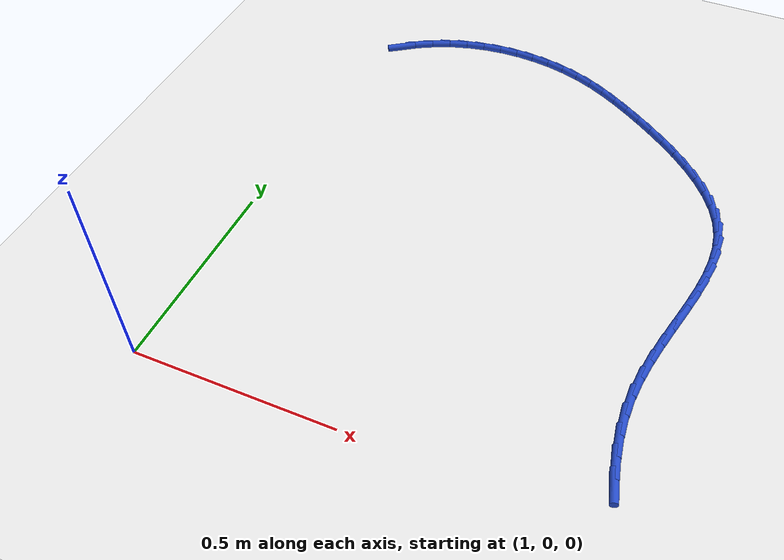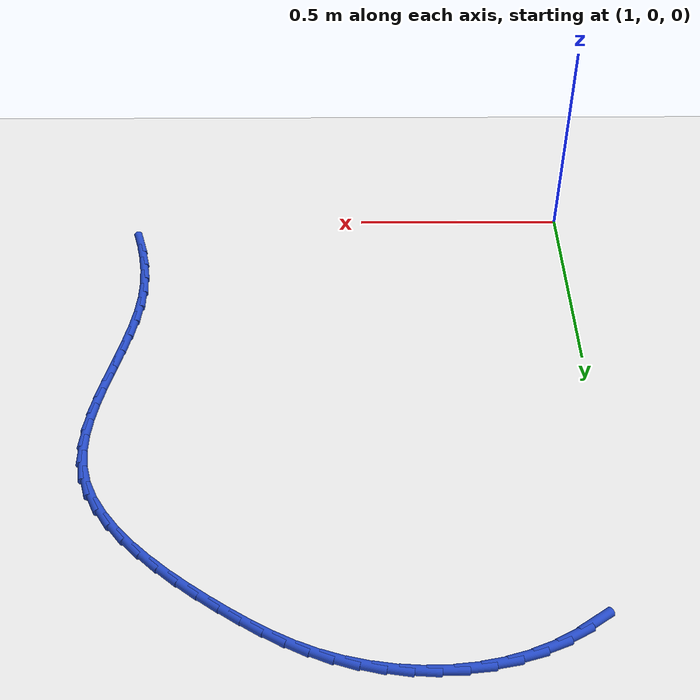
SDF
<sdf version="1.6">
 <world name="default">
  <model name="ground_plane">
   <static>1</static>
   <link name="link">
    <collision name="collision">
     <geometry><plane><normal>0 0 1</normal><size>100 100</size></plane></geometry>
     <surface><friction><ode><mu>100</mu><mu2>50</mu2></ode></friction></surface>
    </collision>
    <visual name="visual">
     <cast_shadows>0</cast_shadows>
     <geometry><plane><normal>0 0 1</normal><size>100 100</size></plane></geometry>
     <material>
      <script><uri>file://media/materials/scripts/gazebo.material</uri><name>Gazebo/WhiteGlow</name></script>
     </material>
    </visual>
   </link>
  </model>
  <model name="line">
   <link name="link_41">
    <pose>1.079669425639153 1.2213472108365582 0.01 0 1.57 0.5984856214067509</pose>
    <collision name="collision">
     <geometry><cylinder><radius>0.01</radius><length>0.08</length></cylinder></geometry>
    </collision>
    <visual name="visual">
     <material>
      <script><name>Gazebo/Blue</name><uri>file://media/materials/scripts/gazebo.material</uri></script>
     </material>
     <geometry><cylinder><radius>0.01</radius><length>0.08</length></cylinder></geometry>
    </visual>
   </link>
   <link name="link_42">
    <pose>1.1231731549273072 1.2510130970443436 0.01 0 1.57 0.4909132639672876</pose>
    <collision name="collision">
     <geometry><cylinder><radius>0.01</radius><length>0.08</length></cylinder></geometry>
    </collision>
    <visual name="visual">
     <material>
      <script><name>Gazebo/Blue</name><uri>file://media/materials/scripts/gazebo.material</uri></script>
     </material>
     <geometry><cylinder><radius>0.01</radius><length>0.08</length></cylinder></geometry>
    </visual>
   </link>
   <link name="link_43">
    <pose>1.168919621076455 1.2754674107403128 0.01 0 1.57 0.385621193769937</pose>
    <collision name="collision">
     <geometry><cylinder><radius>0.01</radius><length>0.08</length></cylinder></geometry>
    </collision>
    <visual name="visual">
     <material>
      <script><name>Gazebo/Blue</name><uri>file://media/materials/scripts/gazebo.material</uri></script>
     </material>
     <geometry><cylinder><radius>0.01</radius><length>0.08</length></cylinder></geometry>
    </visual>
   </link>
   <link name="link_44">
    <pose>1.2165154209391176 1.2947887068980033 0.01 0 1.57 0.2851914351242984</pose>
    <collision name="collision">
     <geometry><cylinder><radius>0.01</radius><length>0.08</length></cylinder></geometry>
    </collision>
    <visual name="visual">
     <material>
      <script><name>Gazebo/Blue</name><uri>file://media/materials/scripts/gazebo.material</uri></script>
     </material>
     <geometry><cylinder><radius>0.01</radius><length>0.08</length></cylinder></geometry>
    </visual>
   </link>
   <link name="link_45">
    <pose>1.2655174116936636 1.309155281147472 0.01 0 1.57 0.18963095166697283</pose>
    <collision name="collision">
     <geometry><cylinder><radius>0.01</radius><length>0.08</length></cylinder></geometry>
    </collision>
    <visual name="visual">
     <material>
      <script><name>Gazebo/Blue</name><uri>file://media/materials/scripts/gazebo.material</uri></script>
     </material>
     <geometry><cylinder><radius>0.01</radius><length>0.08</length></cylinder></geometry>
    </visual>
   </link>
   <link name="link_46">
    <pose>1.315482450518464 1.318745429118775 0.01 0 1.57 0.09856091477869121</pose>
    <collision name="collision">
     <geometry><cylinder><radius>0.01</radius><length>0.08</length></cylinder></geometry>
    </collision>
    <visual name="visual">
     <material>
      <script><name>Gazebo/Blue</name><uri>file://media/materials/scripts/gazebo.material</uri></script>
     </material>
     <geometry><cylinder><radius>0.01</radius><length>0.08</length></cylinder></geometry>
    </visual>
   </link>
   <link name="link_47">
    <pose>1.3659673945918875 1.3237374464419696 0.01 0 1.57 0.011316031862768706</pose>
    <collision name="collision">
     <geometry><cylinder><radius>0.01</radius><length>0.08</length></cylinder></geometry>
    </collision>
    <visual name="visual">
     <material>
      <script><name>Gazebo/Blue</name><uri>file://media/materials/scripts/gazebo.material</uri></script>
     </material>
     <geometry><cylinder><radius>0.01</radius><length>0.08</length></cylinder></geometry>
    </visual>
   </link>
   <link name="link_48">
    <pose>1.4165291010923058 1.3243096287471123 0.01 0 1.57 -0.07297177033497682</pose>
    <collision name="collision">
     <geometry><cylinder><radius>0.01</radius><length>0.08</length></cylinder></geometry>
    </collision>
    <visual name="visual">
     <material>
      <script><name>Gazebo/Blue</name><uri>file://media/materials/scripts/gazebo.material</uri></script>
     </material>
     <geometry><cylinder><radius>0.01</radius><length>0.08</length></cylinder></geometry>
    </visual>
   </link>
   <link name="link_49">
    <pose>1.4667244271980877 1.3206402716642602 0.01 0 1.57 -0.15531435136081623</pose>
    <collision name="collision">
     <geometry><cylinder><radius>0.01</radius><length>0.08</length></cylinder></geometry>
    </collision>
    <visual name="visual">
     <material>
      <script><name>Gazebo/Blue</name><uri>file://media/materials/scripts/gazebo.material</uri></script>
     </material>
     <geometry><cylinder><radius>0.01</radius><length>0.08</length></cylinder></geometry>
    </visual>
   </link>
   <link name="link_50">
    <pose>1.5161102300876028 1.3129076708234693 0.01 0 1.57 -0.2368331651425001</pose>
    <collision name="collision">
     <geometry><cylinder><radius>0.01</radius><length>0.08</length></cylinder></geometry>
    </collision>
    <visual name="visual">
     <material>
      <script><name>Gazebo/Blue</name><uri>file://media/materials/scripts/gazebo.material</uri></script>
     </material>
     <geometry><cylinder><radius>0.01</radius><length>0.08</length></cylinder></geometry>
    </visual>
   </link>
   <link name="link_51">
    <pose>1.564243366939222 1.3012901218547963 0.01 0 1.57 -0.3187390594051004</pose>
    <collision name="collision">
     <geometry><cylinder><radius>0.01</radius><length>0.08</length></cylinder></geometry>
    </collision>
    <visual name="visual">
     <material>
      <script><name>Gazebo/Blue</name><uri>file://media/materials/scripts/gazebo.material</uri></script>
     </material>
     <geometry><cylinder><radius>0.01</radius><length>0.08</length></cylinder></geometry>
    </visual>
   </link>
   <link name="link_52">
    <pose>1.6106812710571592 1.2859660512543754 0.01 0 1.57 -0.3991932722505689</pose>
    <collision name="collision">
     <geometry><cylinder><radius>0.01</radius><length>0.08</length></cylinder></geometry>
    </collision>
    <visual name="visual">
     <material>
      <script><name>Gazebo/Blue</name><uri>file://media/materials/scripts/gazebo.material</uri></script>
     </material>
     <geometry><cylinder><radius>0.01</radius><length>0.08</length></cylinder></geometry>
    </visual>
   </link>
   <link name="link_53">
    <pose>1.6552348368600316 1.26717145881058 0.01 0 1.57 -0.4694994752697667</pose>
    <collision name="collision">
     <geometry><cylinder><radius>0.01</radius><length>0.08</length></cylinder></geometry>
    </collision>
    <visual name="visual">
     <material>
      <script><name>Gazebo/Blue</name><uri>file://media/materials/scripts/gazebo.material</uri></script>
     </material>
     <geometry><cylinder><radius>0.01</radius><length>0.08</length></cylinder></geometry>
    </visual>
   </link>
   <link name="link_54">
    <pose>1.6983649424370144 1.2452899870770489 0.01 0 1.57 -0.5263733945198128</pose>
    <collision name="collision">
     <geometry><cylinder><radius>0.01</radius><length>0.08</length></cylinder></geometry>
    </collision>
    <visual name="visual">
     <material>
      <script><name>Gazebo/Blue</name><uri>file://media/materials/scripts/gazebo.material</uri></script>
     </material>
     <geometry><cylinder><radius>0.01</radius><length>0.08</length></cylinder></geometry>
    </visual>
   </link>
   <link name="link_55">
    <pose>1.7406351977806955 1.220728613997195 0.01 0 1.57 -0.568821658029842</pose>
    <collision name="collision">
     <geometry><cylinder><radius>0.01</radius><length>0.08</length></cylinder></geometry>
    </collision>
    <visual name="visual">
     <material>
      <script><name>Gazebo/Blue</name><uri>file://media/materials/scripts/gazebo.material</uri></script>
     </material>
     <geometry><cylinder><radius>0.01</radius><length>0.08</length></cylinder></geometry>
    </visual>
   </link>
   <link name="link_56">
    <pose>1.7826092128836646 1.1938943175144325 0.01 0 1.57 -0.5977009438417707</pose>
    <collision name="collision">
     <geometry><cylinder><radius>0.01</radius><length>0.08</length></cylinder></geometry>
    </collision>
    <visual name="visual">
     <material>
      <script><name>Gazebo/Blue</name><uri>file://media/materials/scripts/gazebo.material</uri></script>
     </material>
     <geometry><cylinder><radius>0.01</radius><length>0.08</length></cylinder></geometry>
    </visual>
   </link>
   <link name="link_57">
    <pose>1.824791903198454 1.1651777344412386 0.01 0 1.57 -0.6254450036527809</pose>
    <collision name="collision">
     <geometry><cylinder><radius>0.01</radius><length>0.08</length></cylinder></geometry>
    </collision>
    <visual name="visual">
     <material>
      <script><name>Gazebo/Blue</name><uri>file://media/materials/scripts/gazebo.material</uri></script>
     </material>
     <geometry><cylinder><radius>0.01</radius><length>0.08</length></cylinder></geometry>
    </visual>
   </link>
   <link name="link_58">
    <pose>1.866918822145615 1.1347553037159677 0.01 0 1.57 -0.6611488873387801</pose>
    <collision name="collision">
     <geometry><cylinder><radius>0.01</radius><length>0.08</length></cylinder></geometry>
    </collision>
    <visual name="visual">
     <material>
      <script><name>Gazebo/Blue</name><uri>file://media/materials/scripts/gazebo.material</uri></script>
     </material>
     <geometry><cylinder><radius>0.01</radius><length>0.08</length></cylinder></geometry>
    </visual>
   </link>
   <link name="link_59">
    <pose>1.9081844395417216 1.102652821337921 0.01 0 1.57 -0.7061119390348113</pose>
    <collision name="collision">
     <geometry><cylinder><radius>0.01</radius><length>0.08</length></cylinder></geometry>
    </collision>
    <visual name="visual">
     <material>
      <script><name>Gazebo/Blue</name><uri>file://media/materials/scripts/gazebo.material</uri></script>
     </material>
     <geometry><cylinder><radius>0.01</radius><length>0.08</length></cylinder></geometry>
    </visual>
   </link>
   <link name="link_60">
    <pose>1.9477719669703852 1.0688929489048205 0.01 0 1.57 -0.7619769733917123</pose>
    <collision name="collision">
     <geometry><cylinder><radius>0.01</radius><length>0.08</length></cylinder></geometry>
    </collision>
    <visual name="visual">
     <material>
      <script><name>Gazebo/Blue</name><uri>file://media/materials/scripts/gazebo.material</uri></script>
     </material>
     <geometry><cylinder><radius>0.01</radius><length>0.08</length></cylinder></geometry>
    </visual>
   </link>
   <link name="link_61">
    <pose>1.9848646160152164 1.0334983480143887 0.01 0 1.57 -0.83093514034293</pose>
    <collision name="collision">
     <geometry><cylinder><radius>0.01</radius><length>0.08</length></cylinder></geometry>
    </collision>
    <visual name="visual">
     <material>
      <script><name>Gazebo/Blue</name><uri>file://media/materials/scripts/gazebo.material</uri></script>
     </material>
     <geometry><cylinder><radius>0.01</radius><length>0.08</length></cylinder></geometry>
    </visual>
   </link>
   <link name="link_62">
    <pose>2.018645598259826 0.9964916802643485 0.01 0 1.57 -0.9156993403272001</pose>
    <collision name="collision">
     <geometry><cylinder><radius>0.01</radius><length>0.08</length></cylinder></geometry>
    </collision>
    <visual name="visual">
     <material>
      <script><name>Gazebo/Blue</name><uri>file://media/materials/scripts/gazebo.material</uri></script>
     </material>
     <geometry><cylinder><radius>0.01</radius><length>0.08</length></cylinder></geometry>
    </visual>
   </link>
   <link name="link_63">
    <pose>2.0482981252878254 0.9578956072524222 0.01 0 1.57 -1.0192911817715398</pose>
    <collision name="collision">
     <geometry><cylinder><radius>0.01</radius><length>0.08</length></cylinder></geometry>
    </collision>
    <visual name="visual">
     <material>
      <script><name>Gazebo/Blue</name><uri>file://media/materials/scripts/gazebo.material</uri></script>
     </material>
     <geometry><cylinder><radius>0.01</radius><length>0.08</length></cylinder></geometry>
    </visual>
   </link>
   <link name="link_64">
    <pose>2.073005408682825 0.9177327905763331 0.01 0 1.57 -1.1444158587426554</pose>
    <collision name="collision">
     <geometry><cylinder><radius>0.01</radius><length>0.08</length></cylinder></geometry>
    </collision>
    <visual name="visual">
     <material>
      <script><name>Gazebo/Blue</name><uri>file://media/materials/scripts/gazebo.material</uri></script>
     </material>
     <geometry><cylinder><radius>0.01</radius><length>0.08</length></cylinder></geometry>
    </visual>
   </link>
   <link name="link_65">
    <pose>2.091950660028435 0.8760258918338028 0.01 0 1.57 -1.2910443522502602</pose>
    <collision name="collision">
     <geometry><cylinder><radius>0.01</radius><length>0.08</length></cylinder></geometry>
    </collision>
    <visual name="visual">
     <material>
      <script><name>Gazebo/Blue</name><uri>file://media/materials/scripts/gazebo.material</uri></script>
     </material>
     <geometry><cylinder><radius>0.01</radius><length>0.08</length></cylinder></geometry>
    </visual>
   </link>
   <link name="link_66">
    <pose>2.1043685030918136 0.8328011915691826 0.01 0 1.57 -1.436143403753044</pose>
    <collision name="collision">
     <geometry><cylinder><radius>0.01</radius><length>0.08</length></cylinder></geometry>
    </collision>
    <visual name="visual">
     <material>
      <script><name>Gazebo/Blue</name><uri>file://media/materials/scripts/gazebo.material</uri></script>
     </material>
     <geometry><cylinder><radius>0.01</radius><length>0.08</length></cylinder></geometry>
    </visual>
   </link>
   <link name="link_67">
    <pose>2.1104175187452676 0.7881500084407481 0.01 0 1.57 -1.556895570159781</pose>
    <collision name="collision">
     <geometry><cylinder><radius>0.01</radius><length>0.08</length></cylinder></geometry>
    </collision>
    <visual name="visual">
     <material>
      <script><name>Gazebo/Blue</name><uri>file://media/materials/scripts/gazebo.material</uri></script>
     </material>
     <geometry><cylinder><radius>0.01</radius><length>0.08</length></cylinder></geometry>
    </visual>
   </link>
   <link name="link_68">
    <pose>2.111056022365932 0.7422199550878941 0.01 0 1.57 1.4904906124761526</pose>
    <collision name="collision">
     <geometry><cylinder><radius>0.01</radius><length>0.08</length></cylinder></geometry>
    </collision>
    <visual name="visual">
     <material>
      <script><name>Gazebo/Blue</name><uri>file://media/materials/scripts/gazebo.material</uri></script>
     </material>
     <geometry><cylinder><radius>0.01</radius><length>0.08</length></cylinder></geometry>
    </visual>
   </link>
   <link name="link_69">
    <pose>2.1072687345185246 0.6951605028332717 0.01 0 1.57 1.4214493329029483</pose>
    <collision name="collision">
     <geometry><cylinder><radius>0.01</radius><length>0.08</length></cylinder></geometry>
    </collision>
    <visual name="visual">
     <material>
      <script><name>Gazebo/Blue</name><uri>file://media/materials/scripts/gazebo.material</uri></script>
     </material>
     <geometry><cylinder><radius>0.01</radius><length>0.08</length></cylinder></geometry>
    </visual>
   </link>
   <link name="link_70">
    <pose>2.1000403757677613 0.6471211229995287 0.01 0 1.57 1.3751575805137368</pose>
    <collision name="collision">
     <geometry><cylinder><radius>0.01</radius><length>0.08</length></cylinder></geometry>
    </collision>
    <visual name="visual">
     <material>
      <script><name>Gazebo/Blue</name><uri>file://media/materials/scripts/gazebo.material</uri></script>
     </material>
     <geometry><cylinder><radius>0.01</radius><length>0.08</length></cylinder></geometry>
    </visual>
   </link>
   <link name="link_71">
    <pose>2.090355666678359 0.5982512869093144 0.01 0 1.57 1.3493396641045625</pose>
    <collision name="collision">
     <geometry><cylinder><radius>0.01</radius><length>0.08</length></cylinder></geometry>
    </collision>
    <visual name="visual">
     <material>
      <script><name>Gazebo/Blue</name><uri>file://media/materials/scripts/gazebo.material</uri></script>
     </material>
     <geometry><cylinder><radius>0.01</radius><length>0.08</length></cylinder></geometry>
    </visual>
   </link>
   <link name="link_72">
    <pose>2.0791993278150365 0.5487004658852792 0.01 0 1.57 1.3423717937538475</pose>
    <collision name="collision">
     <geometry><cylinder><radius>0.01</radius><length>0.08</length></cylinder></geometry>
    </collision>
    <visual name="visual">
     <material>
      <script><name>Gazebo/Blue</name><uri>file://media/materials/scripts/gazebo.material</uri></script>
     </material>
     <geometry><cylinder><radius>0.01</radius><length>0.08</length></cylinder></geometry>
    </visual>
   </link>
   <link name="link_73">
    <pose>2.0675560797425088 0.4986181312500711 0.01 0 1.57 1.3534282449816455</pose>
    <collision name="collision">
     <geometry><cylinder><radius>0.01</radius><length>0.08</length></cylinder></geometry>
    </collision>
    <visual name="visual">
     <material>
      <script><name>Gazebo/Blue</name><uri>file://media/materials/scripts/gazebo.material</uri></script>
     </material>
     <geometry><cylinder><radius>0.01</radius><length>0.08</length></cylinder></geometry>
    </visual>
   </link>
   <link name="link_74">
    <pose>2.0564106430254943 0.4481537543263406 0.01 0 1.57 1.3824540830874779</pose>
    <collision name="collision">
     <geometry><cylinder><radius>0.01</radius><length>0.08</length></cylinder></geometry>
    </collision>
    <visual name="visual">
     <material>
      <script><name>Gazebo/Blue</name><uri>file://media/materials/scripts/gazebo.material</uri></script>
     </material>
     <geometry><cylinder><radius>0.01</radius><length>0.08</length></cylinder></geometry>
    </visual>
   </link>
   <link name="link_75">
    <pose>2.0467477382287096 0.3974568064367364 0.01 0 1.57 1.4300311470021108</pose>
    <collision name="collision">
     <geometry><cylinder><radius>0.01</radius><length>0.08</length></cylinder></geometry>
    </collision>
    <visual name="visual">
     <material>
      <script><name>Gazebo/Blue</name><uri>file://media/materials/scripts/gazebo.material</uri></script>
     </material>
     <geometry><cylinder><radius>0.01</radius><length>0.08</length></cylinder></geometry>
    </visual>
   </link>
   <link name="link_76">
    <pose>2.039552085916871 0.34667675890390726 0.01 0 1.57 1.4971100655674612</pose>
    <collision name="collision">
     <geometry><cylinder><radius>0.01</radius><length>0.08</length></cylinder></geometry>
    </collision>
    <visual name="visual">
     <material>
      <script><name>Gazebo/Blue</name><uri>file://media/materials/scripts/gazebo.material</uri></script>
     </material>
     <geometry><cylinder><radius>0.01</radius><length>0.08</length></cylinder></geometry>
    </visual>
   </link>
   <link name="link_77">
    <pose>2.0358084066546964 0.2959630830505037 0.01 0 1.57 -1.560329868490882</pose>
    <collision name="collision">
     <geometry><cylinder><radius>0.01</radius><length>0.08</length></cylinder></geometry>
    </collision>
    <visual name="visual">
     <material>
      <script><name>Gazebo/Blue</name><uri>file://media/materials/scripts/gazebo.material</uri></script>
     </material>
     <geometry><cylinder><radius>0.01</radius><length>0.08</length></cylinder></geometry>
    </visual>
   </link>
   <link name="link_78">
    <pose>2.0363371241618315 0.24544951053063405 0.01 0 1.57 -1.478669830316009</pose>
    <collision name="collision">
     <geometry><cylinder><radius>0.01</radius><length>0.08</length></cylinder></geometry>
    </collision>
    <visual name="visual">
     <material>
      <script><name>Gazebo/Blue</name><uri>file://media/materials/scripts/gazebo.material</uri></script>
     </material>
     <geometry><cylinder><radius>0.01</radius><length>0.08</length></cylinder></geometry>
    </visual>
   </link>
   <link name="link_79">
    <pose>2.0409817769204586 0.19517618720963625 0.01 0 1.57 -1.4074644713825635</pose>
    <collision name="collision">
     <geometry><cylinder><radius>0.01</radius><length>0.08</length></cylinder></geometry>
    </collision>
    <visual name="visual">
     <material>
      <script><name>Gazebo/Blue</name><uri>file://media/materials/scripts/gazebo.material</uri></script>
     </material>
     <geometry><cylinder><radius>0.01</radius><length>0.08</length></cylinder></geometry>
    </visual>
   </link>
   <link name="link_80">
    <pose>2.049226286116199 0.14514880754846016 0.01 0 1.57 -1.3470323235805344</pose>
    <collision name="collision">
     <geometry><cylinder><radius>0.01</radius><length>0.08</length></cylinder></geometry>
    </collision>
    <visual name="visual">
     <material>
      <script><name>Gazebo/Blue</name><uri>file://media/materials/scripts/gazebo.material</uri></script>
     </material>
     <geometry><cylinder><radius>0.01</radius><length>0.08</length></cylinder></geometry>
    </visual>
   </link>
   <link name="link_81">
    <pose>2.060554012430843 0.0953730123116837 0.01 0 1.57 -1.2972426872258478</pose>
    <collision name="collision">
     <geometry><cylinder><radius>0.01</radius><length>0.08</length></cylinder></geometry>
    </collision>
    <visual name="visual">
     <material>
      <script><name>Gazebo/Blue</name><uri>file://media/materials/scripts/gazebo.material</uri></script>
     </material>
     <geometry><cylinder><radius>0.01</radius><length>0.08</length></cylinder></geometry>
    </visual>
   </link>
  </model>
 </world>
</sdf>
